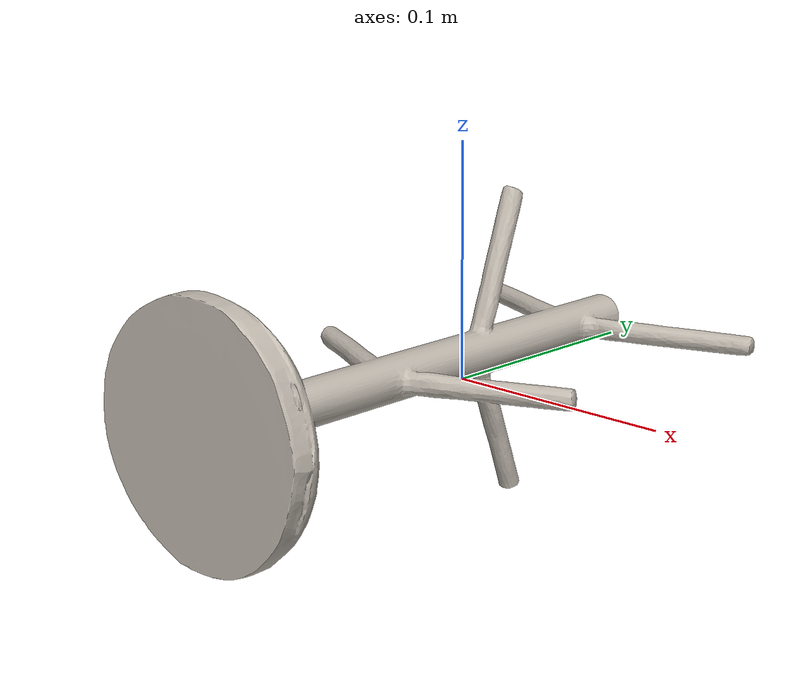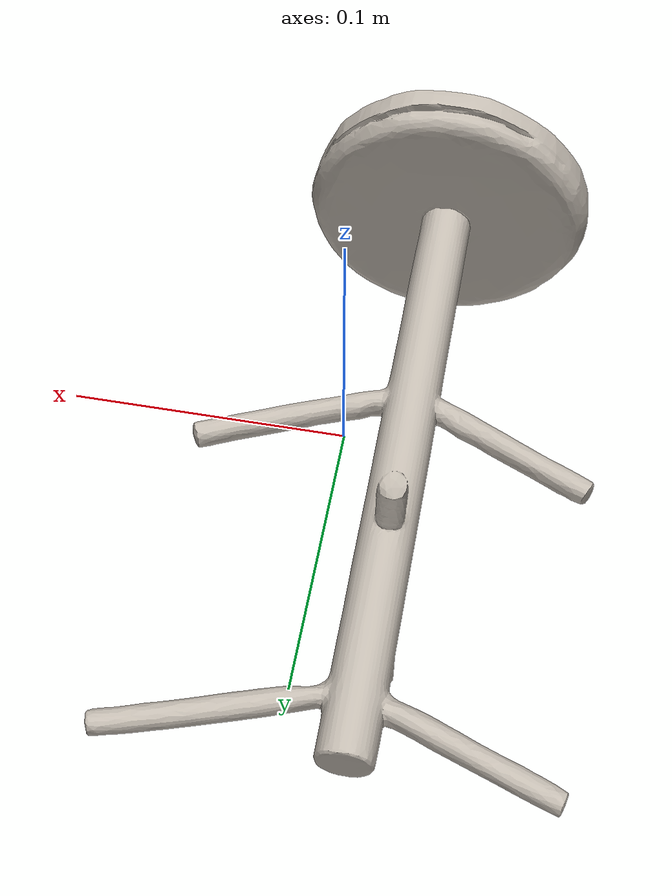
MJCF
<mujoco model="mug_tree_0">
  <compiler meshdir=".." texturedir=".." />
  <default>
    <default class="visual">
      <geom group="2" type="mesh" contype="0" conaffinity="0" density="0" />
    </default>
    <default class="collision">
      <geom group="3" type="mesh" density="0" friction="0.5" />
    </default>
  </default>
  <asset>
    <texture type="2d" name="mug_tree_texture" file="texture.png" />
    <material name="mug_tree_material" texture="mug_tree_texture" specular="0.3" shininess="0.3" />
    <mesh name="mug_tree_visual" file="model.obj" scale="0.126 0.126 0.126" />
    <mesh name="mug_tree_col_0" file="model_collision_0.obj" scale="0.126 0.126 0.126" />
    <mesh name="mug_tree_col_1" file="model_collision_1.obj" scale="0.126 0.126 0.126" />
    <mesh name="mug_tree_col_2" file="model_collision_2.obj" scale="0.126 0.126 0.126" />
    <mesh name="mug_tree_col_3" file="model_collision_3.obj" scale="0.126 0.126 0.126" />
    <mesh name="mug_tree_col_4" file="model_collision_4.obj" scale="0.126 0.126 0.126" />
    <mesh name="mug_tree_col_5" file="model_collision_5.obj" scale="0.126 0.126 0.126" />
    <mesh name="mug_tree_col_6" file="model_collision_6.obj" scale="0.126 0.126 0.126" />
    <mesh name="mug_tree_col_7" file="model_collision_7.obj" scale="0.126 0.126 0.126" />
    <mesh name="mug_tree_col_8" file="model_collision_8.obj" scale="0.126 0.126 0.126" />
    <mesh name="mug_tree_col_9" file="model_collision_9.obj" scale="0.126 0.126 0.126" />
    <mesh name="mug_tree_col_10" file="model_collision_10.obj" scale="0.126 0.126 0.126" />
  </asset>
  <worldbody>
    <body name="model">
      <freejoint />
      <geom material="mug_tree_material" mesh="mug_tree_visual" class="visual" mass="2.0" />
      <geom mesh="mug_tree_col_0" class="collision" />
      <geom mesh="mug_tree_col_1" class="collision" />
      <geom mesh="mug_tree_col_2" class="collision" />
      <geom mesh="mug_tree_col_3" class="collision" />
      <geom mesh="mug_tree_col_4" class="collision" />
      <geom mesh="mug_tree_col_5" class="collision" />
      <geom mesh="mug_tree_col_6" class="collision" />
      <geom mesh="mug_tree_col_7" class="collision" />
      <geom mesh="mug_tree_col_8" class="collision" />
      <geom mesh="mug_tree_col_9" class="collision" />
      <geom mesh="mug_tree_col_10" class="collision" />
    </body>
  </worldbody>
</mujoco>
